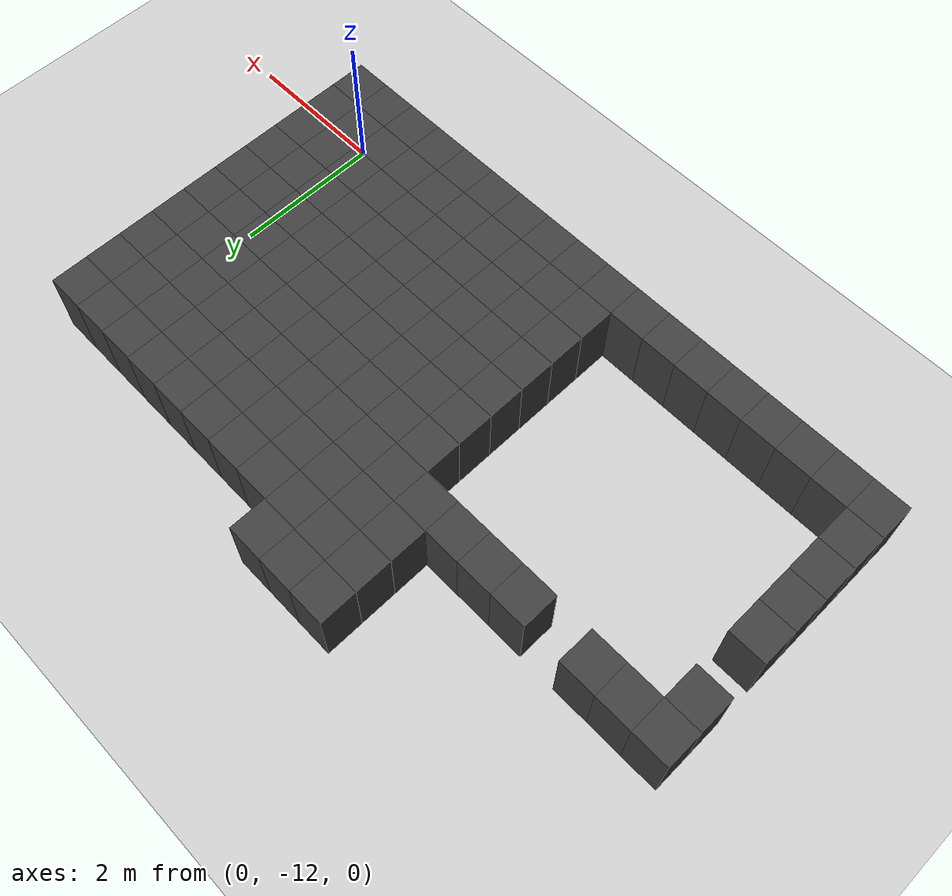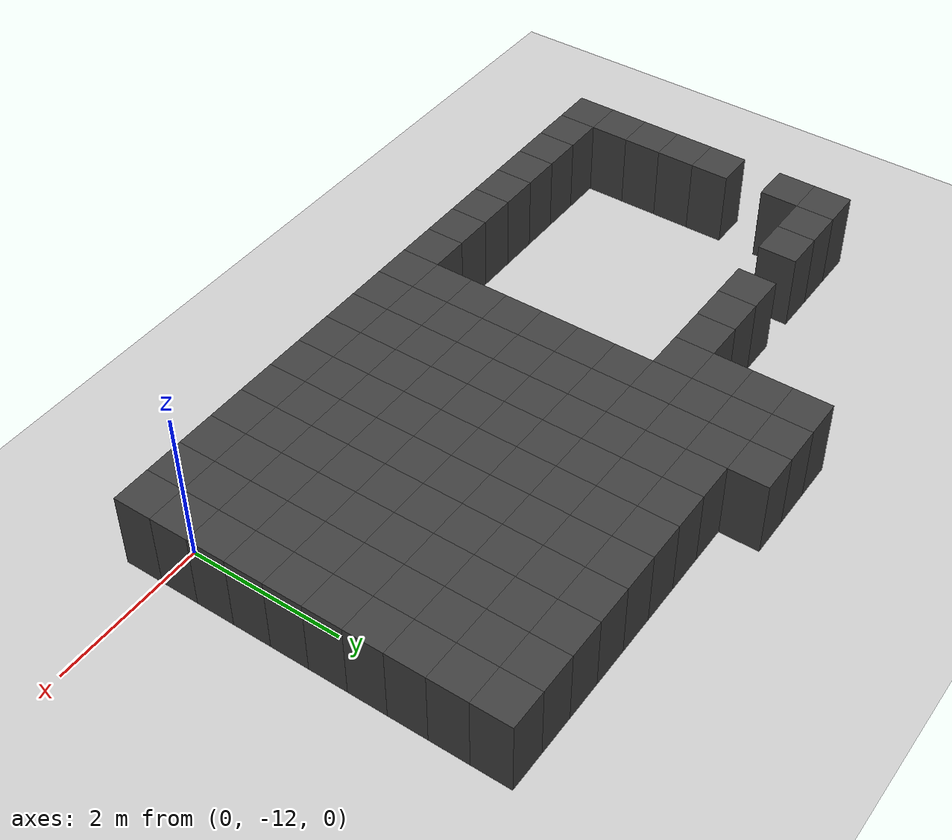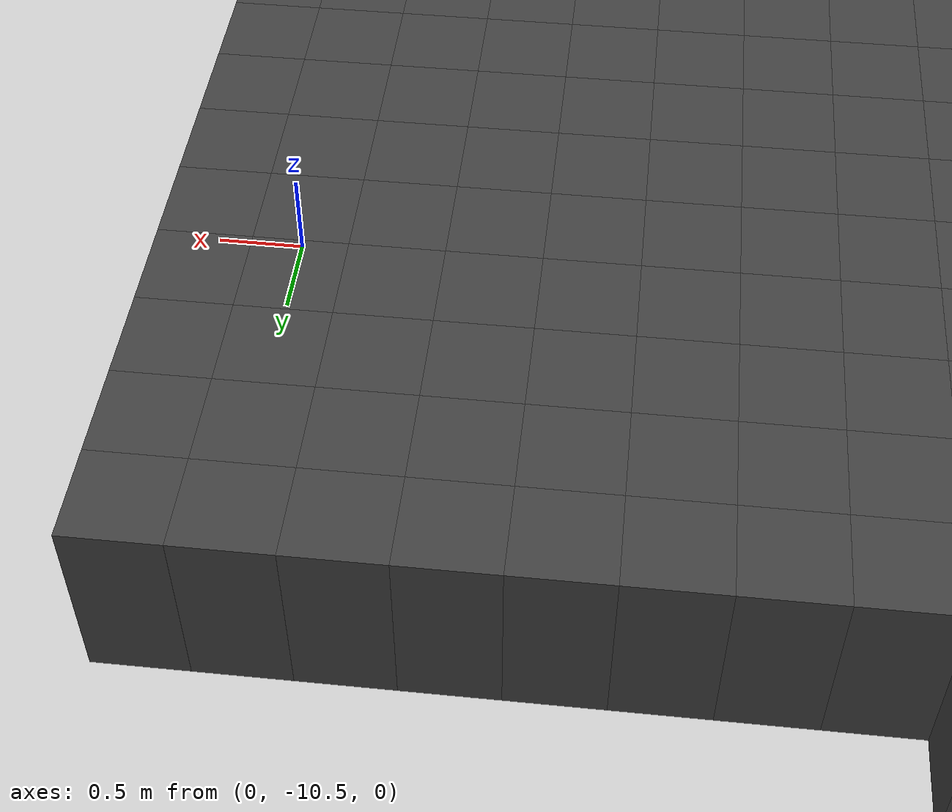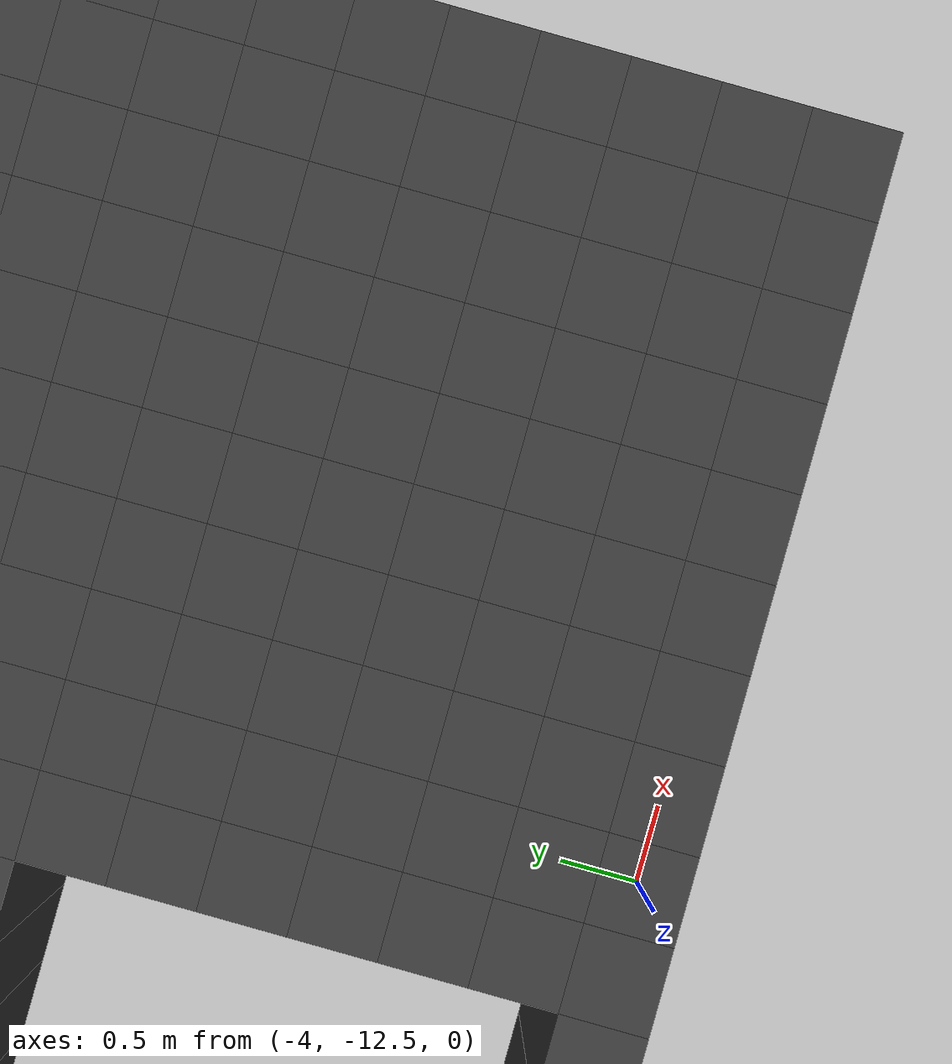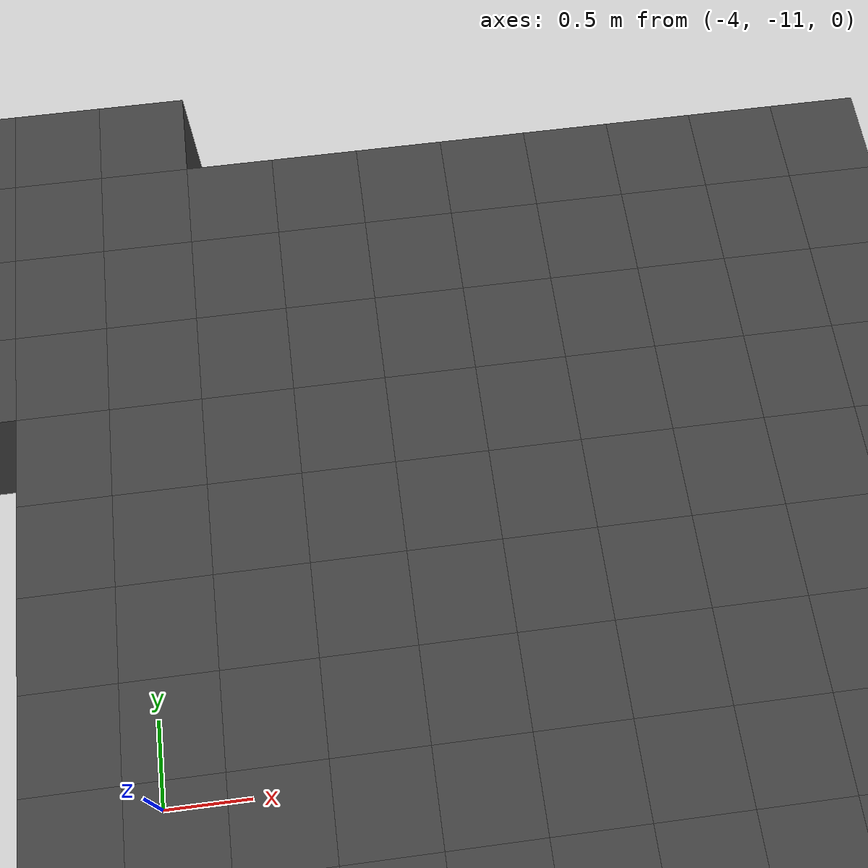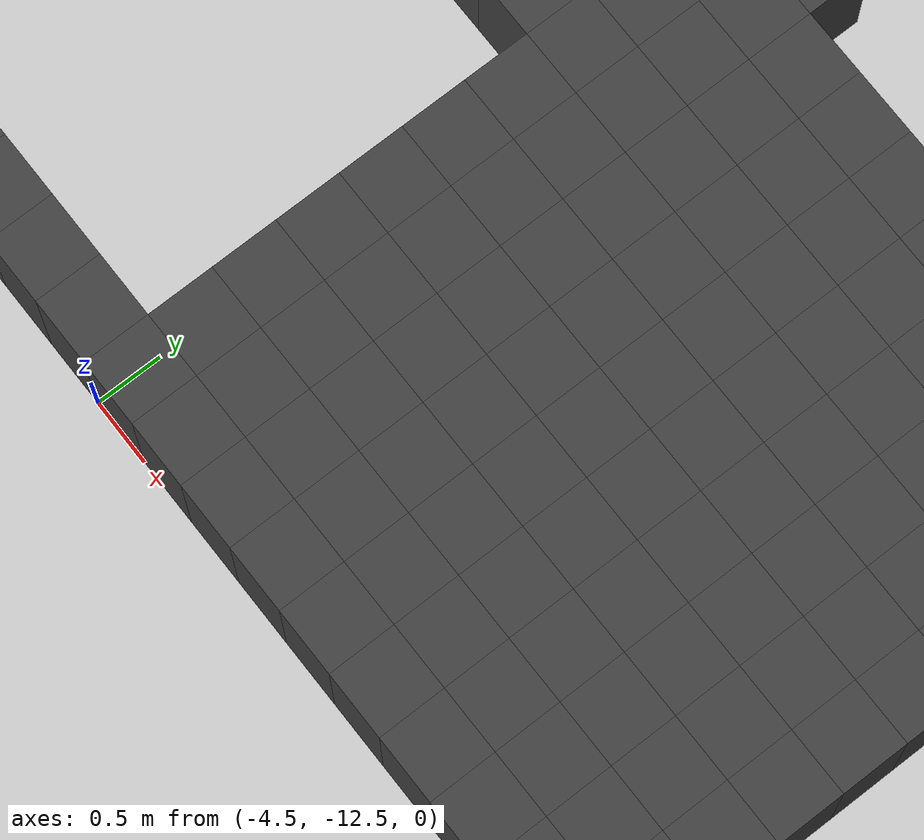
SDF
<sdf version="1.7">
 <world name="map_14190">
  <model name="ground_plane">
   <static>true</static>
   <link name="link">
    <collision name="collision">
     <geometry><plane><normal>0 0 1</normal><size>200 200</size></plane></geometry>
    </collision>
    <visual name="visual">
     <geometry><plane><normal>0 0 1</normal><size>200 200</size></plane></geometry>
     <material><ambient>0.8 0.8 0.8 1</ambient><diffuse>0.8 0.8 0.8 1</diffuse></material>
    </visual>
   </link>
  </model>
  <model name="maze_environment">
   <static>true</static>
   <link name="wall_1385">
    <pose>-4.750 -7.250 0.500 0 0 0</pose>
    <collision name="col"><geometry><box><size>0.5 0.5 1.0</size></box></geometry></collision>
    <visual name="vis">
     <geometry><box><size>0.5 0.5 1.0</size></box></geometry>
     <material><ambient>0.15 0.15 0.15 1</ambient><diffuse>0.25 0.25 0.25 1</diffuse></material>
    </visual>
   </link>
   <link name="wall_1386">
    <pose>-4.250 -7.250 0.500 0 0 0</pose>
    <collision name="col"><geometry><box><size>0.5 0.5 1.0</size></box></geometry></collision>
    <visual name="vis">
     <geometry><box><size>0.5 0.5 1.0</size></box></geometry>
     <material><ambient>0.15 0.15 0.15 1</ambient><diffuse>0.25 0.25 0.25 1</diffuse></material>
    </visual>
   </link>
   <link name="wall_1387">
    <pose>-3.750 -7.250 0.500 0 0 0</pose>
    <collision name="col"><geometry><box><size>0.5 0.5 1.0</size></box></geometry></collision>
    <visual name="vis">
     <geometry><box><size>0.5 0.5 1.0</size></box></geometry>
     <material><ambient>0.15 0.15 0.15 1</ambient><diffuse>0.25 0.25 0.25 1</diffuse></material>
    </visual>
   </link>
   <link name="wall_1418">
    <pose>-4.750 -7.750 0.500 0 0 0</pose>
    <collision name="col"><geometry><box><size>0.5 0.5 1.0</size></box></geometry></collision>
    <visual name="vis">
     <geometry><box><size>0.5 0.5 1.0</size></box></geometry>
     <material><ambient>0.15 0.15 0.15 1</ambient><diffuse>0.25 0.25 0.25 1</diffuse></material>
    </visual>
   </link>
   <link name="wall_1419">
    <pose>-4.250 -7.750 0.500 0 0 0</pose>
    <collision name="col"><geometry><box><size>0.5 0.5 1.0</size></box></geometry></collision>
    <visual name="vis">
     <geometry><box><size>0.5 0.5 1.0</size></box></geometry>
     <material><ambient>0.15 0.15 0.15 1</ambient><diffuse>0.25 0.25 0.25 1</diffuse></material>
    </visual>
   </link>
   <link name="wall_1420">
    <pose>-3.750 -7.750 0.500 0 0 0</pose>
    <collision name="col"><geometry><box><size>0.5 0.5 1.0</size></box></geometry></collision>
    <visual name="vis">
     <geometry><box><size>0.5 0.5 1.0</size></box></geometry>
     <material><ambient>0.15 0.15 0.15 1</ambient><diffuse>0.25 0.25 0.25 1</diffuse></material>
    </visual>
   </link>
   <link name="wall_1421">
    <pose>-3.250 -7.750 0.500 0 0 0</pose>
    <collision name="col"><geometry><box><size>0.5 0.5 1.0</size></box></geometry></collision>
    <visual name="vis">
     <geometry><box><size>0.5 0.5 1.0</size></box></geometry>
     <material><ambient>0.15 0.15 0.15 1</ambient><diffuse>0.25 0.25 0.25 1</diffuse></material>
    </visual>
   </link>
   <link name="wall_1422">
    <pose>-2.750 -7.750 0.500 0 0 0</pose>
    <collision name="col"><geometry><box><size>0.5 0.5 1.0</size></box></geometry></collision>
    <visual name="vis">
     <geometry><box><size>0.5 0.5 1.0</size></box></geometry>
     <material><ambient>0.15 0.15 0.15 1</ambient><diffuse>0.25 0.25 0.25 1</diffuse></material>
    </visual>
   </link>
   <link name="wall_1423">
    <pose>-2.250 -7.750 0.500 0 0 0</pose>
    <collision name="col"><geometry><box><size>0.5 0.5 1.0</size></box></geometry></collision>
    <visual name="vis">
     <geometry><box><size>0.5 0.5 1.0</size></box></geometry>
     <material><ambient>0.15 0.15 0.15 1</ambient><diffuse>0.25 0.25 0.25 1</diffuse></material>
    </visual>
   </link>
   <link name="wall_1424">
    <pose>-1.750 -7.750 0.500 0 0 0</pose>
    <collision name="col"><geometry><box><size>0.5 0.5 1.0</size></box></geometry></collision>
    <visual name="vis">
     <geometry><box><size>0.5 0.5 1.0</size></box></geometry>
     <material><ambient>0.15 0.15 0.15 1</ambient><diffuse>0.25 0.25 0.25 1</diffuse></material>
    </visual>
   </link>
   <link name="wall_1425">
    <pose>-1.250 -7.750 0.500 0 0 0</pose>
    <collision name="col"><geometry><box><size>0.5 0.5 1.0</size></box></geometry></collision>
    <visual name="vis">
     <geometry><box><size>0.5 0.5 1.0</size></box></geometry>
     <material><ambient>0.15 0.15 0.15 1</ambient><diffuse>0.25 0.25 0.25 1</diffuse></material>
    </visual>
   </link>
   <link name="wall_1426">
    <pose>-0.750 -7.750 0.500 0 0 0</pose>
    <collision name="col"><geometry><box><size>0.5 0.5 1.0</size></box></geometry></collision>
    <visual name="vis">
     <geometry><box><size>0.5 0.5 1.0</size></box></geometry>
     <material><ambient>0.15 0.15 0.15 1</ambient><diffuse>0.25 0.25 0.25 1</diffuse></material>
    </visual>
   </link>
   <link name="wall_1427">
    <pose>-0.250 -7.750 0.500 0 0 0</pose>
    <collision name="col"><geometry><box><size>0.5 0.5 1.0</size></box></geometry></collision>
    <visual name="vis">
     <geometry><box><size>0.5 0.5 1.0</size></box></geometry>
     <material><ambient>0.15 0.15 0.15 1</ambient><diffuse>0.25 0.25 0.25 1</diffuse></material>
    </visual>
   </link>
   <link name="wall_1428">
    <pose>0.250 -7.750 0.500 0 0 0</pose>
    <collision name="col"><geometry><box><size>0.5 0.5 1.0</size></box></geometry></collision>
    <visual name="vis">
     <geometry><box><size>0.5 0.5 1.0</size></box></geometry>
     <material><ambient>0.15 0.15 0.15 1</ambient><diffuse>0.25 0.25 0.25 1</diffuse></material>
    </visual>
   </link>
   <link name="wall_1451">
    <pose>-4.750 -8.250 0.500 0 0 0</pose>
    <collision name="col"><geometry><box><size>0.5 0.5 1.0</size></box></geometry></collision>
    <visual name="vis">
     <geometry><box><size>0.5 0.5 1.0</size></box></geometry>
     <material><ambient>0.15 0.15 0.15 1</ambient><diffuse>0.25 0.25 0.25 1</diffuse></material>
    </visual>
   </link>
   <link name="wall_1452">
    <pose>-4.250 -8.250 0.500 0 0 0</pose>
    <collision name="col"><geometry><box><size>0.5 0.5 1.0</size></box></geometry></collision>
    <visual name="vis">
     <geometry><box><size>0.5 0.5 1.0</size></box></geometry>
     <material><ambient>0.15 0.15 0.15 1</ambient><diffuse>0.25 0.25 0.25 1</diffuse></material>
    </visual>
   </link>
   <link name="wall_1453">
    <pose>-3.750 -8.250 0.500 0 0 0</pose>
    <collision name="col"><geometry><box><size>0.5 0.5 1.0</size></box></geometry></collision>
    <visual name="vis">
     <geometry><box><size>0.5 0.5 1.0</size></box></geometry>
     <material><ambient>0.15 0.15 0.15 1</ambient><diffuse>0.25 0.25 0.25 1</diffuse></material>
    </visual>
   </link>
   <link name="wall_1454">
    <pose>-3.250 -8.250 0.500 0 0 0</pose>
    <collision name="col"><geometry><box><size>0.5 0.5 1.0</size></box></geometry></collision>
    <visual name="vis">
     <geometry><box><size>0.5 0.5 1.0</size></box></geometry>
     <material><ambient>0.15 0.15 0.15 1</ambient><diffuse>0.25 0.25 0.25 1</diffuse></material>
    </visual>
   </link>
   <link name="wall_1455">
    <pose>-2.750 -8.250 0.500 0 0 0</pose>
    <collision name="col"><geometry><box><size>0.5 0.5 1.0</size></box></geometry></collision>
    <visual name="vis">
     <geometry><box><size>0.5 0.5 1.0</size></box></geometry>
     <material><ambient>0.15 0.15 0.15 1</ambient><diffuse>0.25 0.25 0.25 1</diffuse></material>
    </visual>
   </link>
   <link name="wall_1456">
    <pose>-2.250 -8.250 0.500 0 0 0</pose>
    <collision name="col"><geometry><box><size>0.5 0.5 1.0</size></box></geometry></collision>
    <visual name="vis">
     <geometry><box><size>0.5 0.5 1.0</size></box></geometry>
     <material><ambient>0.15 0.15 0.15 1</ambient><diffuse>0.25 0.25 0.25 1</diffuse></material>
    </visual>
   </link>
   <link name="wall_1457">
    <pose>-1.750 -8.250 0.500 0 0 0</pose>
    <collision name="col"><geometry><box><size>0.5 0.5 1.0</size></box></geometry></collision>
    <visual name="vis">
     <geometry><box><size>0.5 0.5 1.0</size></box></geometry>
     <material><ambient>0.15 0.15 0.15 1</ambient><diffuse>0.25 0.25 0.25 1</diffuse></material>
    </visual>
   </link>
   <link name="wall_1458">
    <pose>-1.250 -8.250 0.500 0 0 0</pose>
    <collision name="col"><geometry><box><size>0.5 0.5 1.0</size></box></geometry></collision>
    <visual name="vis">
     <geometry><box><size>0.5 0.5 1.0</size></box></geometry>
     <material><ambient>0.15 0.15 0.15 1</ambient><diffuse>0.25 0.25 0.25 1</diffuse></material>
    </visual>
   </link>
   <link name="wall_1459">
    <pose>-0.750 -8.250 0.500 0 0 0</pose>
    <collision name="col"><geometry><box><size>0.5 0.5 1.0</size></box></geometry></collision>
    <visual name="vis">
     <geometry><box><size>0.5 0.5 1.0</size></box></geometry>
     <material><ambient>0.15 0.15 0.15 1</ambient><diffuse>0.25 0.25 0.25 1</diffuse></material>
    </visual>
   </link>
   <link name="wall_1460">
    <pose>-0.250 -8.250 0.500 0 0 0</pose>
    <collision name="col"><geometry><box><size>0.5 0.5 1.0</size></box></geometry></collision>
    <visual name="vis">
     <geometry><box><size>0.5 0.5 1.0</size></box></geometry>
     <material><ambient>0.15 0.15 0.15 1</ambient><diffuse>0.25 0.25 0.25 1</diffuse></material>
    </visual>
   </link>
   <link name="wall_1461">
    <pose>0.250 -8.250 0.500 0 0 0</pose>
    <collision name="col"><geometry><box><size>0.5 0.5 1.0</size></box></geometry></collision>
    <visual name="vis">
     <geometry><box><size>0.5 0.5 1.0</size></box></geometry>
     <material><ambient>0.15 0.15 0.15 1</ambient><diffuse>0.25 0.25 0.25 1</diffuse></material>
    </visual>
   </link>
   <link name="wall_1484">
    <pose>-8.250 -8.750 0.500 0 0 0</pose>
    <collision name="col"><geometry><box><size>0.5 0.5 1.0</size></box></geometry></collision>
    <visual name="vis">
     <geometry><box><size>0.5 0.5 1.0</size></box></geometry>
     <material><ambient>0.15 0.15 0.15 1</ambient><diffuse>0.25 0.25 0.25 1</diffuse></material>
    </visual>
   </link>
   <link name="wall_1485">
    <pose>-7.750 -8.750 0.500 0 0 0</pose>
    <collision name="col"><geometry><box><size>0.5 0.5 1.0</size></box></geometry></collision>
    <visual name="vis">
     <geometry><box><size>0.5 0.5 1.0</size></box></geometry>
     <material><ambient>0.15 0.15 0.15 1</ambient><diffuse>0.25 0.25 0.25 1</diffuse></material>
    </visual>
   </link>
   <link name="wall_1486">
    <pose>-7.250 -8.750 0.500 0 0 0</pose>
    <collision name="col"><geometry><box><size>0.5 0.5 1.0</size></box></geometry></collision>
    <visual name="vis">
     <geometry><box><size>0.5 0.5 1.0</size></box></geometry>
     <material><ambient>0.15 0.15 0.15 1</ambient><diffuse>0.25 0.25 0.25 1</diffuse></material>
    </visual>
   </link>
   <link name="wall_1487">
    <pose>-6.250 -8.750 0.500 0 0 0</pose>
    <collision name="col"><geometry><box><size>0.5 0.5 1.0</size></box></geometry></collision>
    <visual name="vis">
     <geometry><box><size>0.5 0.5 1.0</size></box></geometry>
     <material><ambient>0.15 0.15 0.15 1</ambient><diffuse>0.25 0.25 0.25 1</diffuse></material>
    </visual>
   </link>
   <link name="wall_1488">
    <pose>-5.750 -8.750 0.500 0 0 0</pose>
    <collision name="col"><geometry><box><size>0.5 0.5 1.0</size></box></geometry></collision>
    <visual name="vis">
     <geometry><box><size>0.5 0.5 1.0</size></box></geometry>
     <material><ambient>0.15 0.15 0.15 1</ambient><diffuse>0.25 0.25 0.25 1</diffuse></material>
    </visual>
   </link>
   <link name="wall_1489">
    <pose>-5.250 -8.750 0.500 0 0 0</pose>
    <collision name="col"><geometry><box><size>0.5 0.5 1.0</size></box></geometry></collision>
    <visual name="vis">
     <geometry><box><size>0.5 0.5 1.0</size></box></geometry>
     <material><ambient>0.15 0.15 0.15 1</ambient><diffuse>0.25 0.25 0.25 1</diffuse></material>
    </visual>
   </link>
   <link name="wall_1490">
    <pose>-4.750 -8.750 0.500 0 0 0</pose>
    <collision name="col"><geometry><box><size>0.5 0.5 1.0</size></box></geometry></collision>
    <visual name="vis">
     <geometry><box><size>0.5 0.5 1.0</size></box></geometry>
     <material><ambient>0.15 0.15 0.15 1</ambient><diffuse>0.25 0.25 0.25 1</diffuse></material>
    </visual>
   </link>
   <link name="wall_1491">
    <pose>-4.250 -8.750 0.500 0 0 0</pose>
    <collision name="col"><geometry><box><size>0.5 0.5 1.0</size></box></geometry></collision>
    <visual name="vis">
     <geometry><box><size>0.5 0.5 1.0</size></box></geometry>
     <material><ambient>0.15 0.15 0.15 1</ambient><diffuse>0.25 0.25 0.25 1</diffuse></material>
    </visual>
   </link>
   <link name="wall_1492">
    <pose>-3.750 -8.750 0.500 0 0 0</pose>
    <collision name="col"><geometry><box><size>0.5 0.5 1.0</size></box></geometry></collision>
    <visual name="vis">
     <geometry><box><size>0.5 0.5 1.0</size></box></geometry>
     <material><ambient>0.15 0.15 0.15 1</ambient><diffuse>0.25 0.25 0.25 1</diffuse></material>
    </visual>
   </link>
   <link name="wall_1493">
    <pose>-3.250 -8.750 0.500 0 0 0</pose>
    <collision name="col"><geometry><box><size>0.5 0.5 1.0</size></box></geometry></collision>
    <visual name="vis">
     <geometry><box><size>0.5 0.5 1.0</size></box></geometry>
     <material><ambient>0.15 0.15 0.15 1</ambient><diffuse>0.25 0.25 0.25 1</diffuse></material>
    </visual>
   </link>
   <link name="wall_1494">
    <pose>-2.750 -8.750 0.500 0 0 0</pose>
    <collision name="col"><geometry><box><size>0.5 0.5 1.0</size></box></geometry></collision>
    <visual name="vis">
     <geometry><box><size>0.5 0.5 1.0</size></box></geometry>
     <material><ambient>0.15 0.15 0.15 1</ambient><diffuse>0.25 0.25 0.25 1</diffuse></material>
    </visual>
   </link>
   <link name="wall_1495">
    <pose>-2.250 -8.750 0.500 0 0 0</pose>
    <collision name="col"><geometry><box><size>0.5 0.5 1.0</size></box></geometry></collision>
    <visual name="vis">
     <geometry><box><size>0.5 0.5 1.0</size></box></geometry>
     <material><ambient>0.15 0.15 0.15 1</ambient><diffuse>0.25 0.25 0.25 1</diffuse></material>
    </visual>
   </link>
   <link name="wall_1496">
    <pose>-1.750 -8.750 0.500 0 0 0</pose>
    <collision name="col"><geometry><box><size>0.5 0.5 1.0</size></box></geometry></collision>
    <visual name="vis">
     <geometry><box><size>0.5 0.5 1.0</size></box></geometry>
     <material><ambient>0.15 0.15 0.15 1</ambient><diffuse>0.25 0.25 0.25 1</diffuse></material>
    </visual>
   </link>
   <link name="wall_1497">
    <pose>-1.250 -8.750 0.500 0 0 0</pose>
    <collision name="col"><geometry><box><size>0.5 0.5 1.0</size></box></geometry></collision>
    <visual name="vis">
     <geometry><box><size>0.5 0.5 1.0</size></box></geometry>
     <material><ambient>0.15 0.15 0.15 1</ambient><diffuse>0.25 0.25 0.25 1</diffuse></material>
    </visual>
   </link>
   <link name="wall_1498">
    <pose>-0.750 -8.750 0.500 0 0 0</pose>
    <collision name="col"><geometry><box><size>0.5 0.5 1.0</size></box></geometry></collision>
    <visual name="vis">
     <geometry><box><size>0.5 0.5 1.0</size></box></geometry>
     <material><ambient>0.15 0.15 0.15 1</ambient><diffuse>0.25 0.25 0.25 1</diffuse></material>
    </visual>
   </link>
   <link name="wall_1499">
    <pose>-0.250 -8.750 0.500 0 0 0</pose>
    <collision name="col"><geometry><box><size>0.5 0.5 1.0</size></box></geometry></collision>
    <visual name="vis">
     <geometry><box><size>0.5 0.5 1.0</size></box></geometry>
     <material><ambient>0.15 0.15 0.15 1</ambient><diffuse>0.25 0.25 0.25 1</diffuse></material>
    </visual>
   </link>
   <link name="wall_1500">
    <pose>0.250 -8.750 0.500 0 0 0</pose>
    <collision name="col"><geometry><box><size>0.5 0.5 1.0</size></box></geometry></collision>
    <visual name="vis">
     <geometry><box><size>0.5 0.5 1.0</size></box></geometry>
     <material><ambient>0.15 0.15 0.15 1</ambient><diffuse>0.25 0.25 0.25 1</diffuse></material>
    </visual>
   </link>
   <link name="wall_1523">
    <pose>-8.250 -9.250 0.500 0 0 0</pose>
    <collision name="col"><geometry><box><size>0.5 0.5 1.0</size></box></geometry></collision>
    <visual name="vis">
     <geometry><box><size>0.5 0.5 1.0</size></box></geometry>
     <material><ambient>0.15 0.15 0.15 1</ambient><diffuse>0.25 0.25 0.25 1</diffuse></material>
    </visual>
   </link>
   <link name="wall_1524">
    <pose>-4.250 -9.250 0.500 0 0 0</pose>
    <collision name="col"><geometry><box><size>0.5 0.5 1.0</size></box></geometry></collision>
    <visual name="vis">
     <geometry><box><size>0.5 0.5 1.0</size></box></geometry>
     <material><ambient>0.15 0.15 0.15 1</ambient><diffuse>0.25 0.25 0.25 1</diffuse></material>
    </visual>
   </link>
   <link name="wall_1525">
    <pose>-3.750 -9.250 0.500 0 0 0</pose>
    <collision name="col"><geometry><box><size>0.5 0.5 1.0</size></box></geometry></collision>
    <visual name="vis">
     <geometry><box><size>0.5 0.5 1.0</size></box></geometry>
     <material><ambient>0.15 0.15 0.15 1</ambient><diffuse>0.25 0.25 0.25 1</diffuse></material>
    </visual>
   </link>
   <link name="wall_1526">
    <pose>-3.250 -9.250 0.500 0 0 0</pose>
    <collision name="col"><geometry><box><size>0.5 0.5 1.0</size></box></geometry></collision>
    <visual name="vis">
     <geometry><box><size>0.5 0.5 1.0</size></box></geometry>
     <material><ambient>0.15 0.15 0.15 1</ambient><diffuse>0.25 0.25 0.25 1</diffuse></material>
    </visual>
   </link>
   <link name="wall_1527">
    <pose>-2.750 -9.250 0.500 0 0 0</pose>
    <collision name="col"><geometry><box><size>0.5 0.5 1.0</size></box></geometry></collision>
    <visual name="vis">
     <geometry><box><size>0.5 0.5 1.0</size></box></geometry>
     <material><ambient>0.15 0.15 0.15 1</ambient><diffuse>0.25 0.25 0.25 1</diffuse></material>
    </visual>
   </link>
   <link name="wall_1528">
    <pose>-2.250 -9.250 0.500 0 0 0</pose>
    <collision name="col"><geometry><box><size>0.5 0.5 1.0</size></box></geometry></collision>
    <visual name="vis">
     <geometry><box><size>0.5 0.5 1.0</size></box></geometry>
     <material><ambient>0.15 0.15 0.15 1</ambient><diffuse>0.25 0.25 0.25 1</diffuse></material>
    </visual>
   </link>
   <link name="wall_1529">
    <pose>-1.750 -9.250 0.500 0 0 0</pose>
    <collision name="col"><geometry><box><size>0.5 0.5 1.0</size></box></geometry></collision>
    <visual name="vis">
     <geometry><box><size>0.5 0.5 1.0</size></box></geometry>
     <material><ambient>0.15 0.15 0.15 1</ambient><diffuse>0.25 0.25 0.25 1</diffuse></material>
    </visual>
   </link>
   <link name="wall_1530">
    <pose>-1.250 -9.250 0.500 0 0 0</pose>
    <collision name="col"><geometry><box><size>0.5 0.5 1.0</size></box></geometry></collision>
    <visual name="vis">
     <geometry><box><size>0.5 0.5 1.0</size></box></geometry>
     <material><ambient>0.15 0.15 0.15 1</ambient><diffuse>0.25 0.25 0.25 1</diffuse></material>
    </visual>
   </link>
   <link name="wall_1531">
    <pose>-0.750 -9.250 0.500 0 0 0</pose>
    <collision name="col"><geometry><box><size>0.5 0.5 1.0</size></box></geometry></collision>
    <visual name="vis">
     <geometry><box><size>0.5 0.5 1.0</size></box></geometry>
     <material><ambient>0.15 0.15 0.15 1</ambient><diffuse>0.25 0.25 0.25 1</diffuse></material>
    </visual>
   </link>
   <link name="wall_1532">
    <pose>-0.250 -9.250 0.500 0 0 0</pose>
    <collision name="col"><geometry><box><size>0.5 0.5 1.0</size></box></geometry></collision>
    <visual name="vis">
     <geometry><box><size>0.5 0.5 1.0</size></box></geometry>
     <material><ambient>0.15 0.15 0.15 1</ambient><diffuse>0.25 0.25 0.25 1</diffuse></material>
    </visual>
   </link>
   <link name="wall_1533">
    <pose>0.250 -9.250 0.500 0 0 0</pose>
    <collision name="col"><geometry><box><size>0.5 0.5 1.0</size></box></geometry></collision>
    <visual name="vis">
     <geometry><box><size>0.5 0.5 1.0</size></box></geometry>
     <material><ambient>0.15 0.15 0.15 1</ambient><diffuse>0.25 0.25 0.25 1</diffuse></material>
    </visual>
   </link>
   <link name="wall_1556">
    <pose>-4.250 -9.750 0.500 0 0 0</pose>
    <collision name="col"><geometry><box><size>0.5 0.5 1.0</size></box></geometry></collision>
    <visual name="vis">
     <geometry><box><size>0.5 0.5 1.0</size></box></geometry>
     <material><ambient>0.15 0.15 0.15 1</ambient><diffuse>0.25 0.25 0.25 1</diffuse></material>
    </visual>
   </link>
   <link name="wall_1557">
    <pose>-3.750 -9.750 0.500 0 0 0</pose>
    <collision name="col"><geometry><box><size>0.5 0.5 1.0</size></box></geometry></collision>
    <visual name="vis">
     <geometry><box><size>0.5 0.5 1.0</size></box></geometry>
     <material><ambient>0.15 0.15 0.15 1</ambient><diffuse>0.25 0.25 0.25 1</diffuse></material>
    </visual>
   </link>
   <link name="wall_1558">
    <pose>-3.250 -9.750 0.500 0 0 0</pose>
    <collision name="col"><geometry><box><size>0.5 0.5 1.0</size></box></geometry></collision>
    <visual name="vis">
     <geometry><box><size>0.5 0.5 1.0</size></box></geometry>
     <material><ambient>0.15 0.15 0.15 1</ambient><diffuse>0.25 0.25 0.25 1</diffuse></material>
    </visual>
   </link>
   <link name="wall_1559">
    <pose>-2.750 -9.750 0.500 0 0 0</pose>
    <collision name="col"><geometry><box><size>0.5 0.5 1.0</size></box></geometry></collision>
    <visual name="vis">
     <geometry><box><size>0.5 0.5 1.0</size></box></geometry>
     <material><ambient>0.15 0.15 0.15 1</ambient><diffuse>0.25 0.25 0.25 1</diffuse></material>
    </visual>
   </link>
   <link name="wall_1560">
    <pose>-2.250 -9.750 0.500 0 0 0</pose>
    <collision name="col"><geometry><box><size>0.5 0.5 1.0</size></box></geometry></collision>
    <visual name="vis">
     <geometry><box><size>0.5 0.5 1.0</size></box></geometry>
     <material><ambient>0.15 0.15 0.15 1</ambient><diffuse>0.25 0.25 0.25 1</diffuse></material>
    </visual>
   </link>
   <link name="wall_1561">
    <pose>-1.750 -9.750 0.500 0 0 0</pose>
    <collision name="col"><geometry><box><size>0.5 0.5 1.0</size></box></geometry></collision>
    <visual name="vis">
     <geometry><box><size>0.5 0.5 1.0</size></box></geometry>
     <material><ambient>0.15 0.15 0.15 1</ambient><diffuse>0.25 0.25 0.25 1</diffuse></material>
    </visual>
   </link>
   <link name="wall_1562">
    <pose>-1.250 -9.750 0.500 0 0 0</pose>
    <collision name="col"><geometry><box><size>0.5 0.5 1.0</size></box></geometry></collision>
    <visual name="vis">
     <geometry><box><size>0.5 0.5 1.0</size></box></geometry>
     <material><ambient>0.15 0.15 0.15 1</ambient><diffuse>0.25 0.25 0.25 1</diffuse></material>
    </visual>
   </link>
   <link name="wall_1563">
    <pose>-0.750 -9.750 0.500 0 0 0</pose>
    <collision name="col"><geometry><box><size>0.5 0.5 1.0</size></box></geometry></collision>
    <visual name="vis">
     <geometry><box><size>0.5 0.5 1.0</size></box></geometry>
     <material><ambient>0.15 0.15 0.15 1</ambient><diffuse>0.25 0.25 0.25 1</diffuse></material>
    </visual>
   </link>
   <link name="wall_1564">
    <pose>-0.250 -9.750 0.500 0 0 0</pose>
    <collision name="col"><geometry><box><size>0.5 0.5 1.0</size></box></geometry></collision>
    <visual name="vis">
     <geometry><box><size>0.5 0.5 1.0</size></box></geometry>
     <material><ambient>0.15 0.15 0.15 1</ambient><diffuse>0.25 0.25 0.25 1</diffuse></material>
    </visual>
   </link>
   <link name="wall_1565">
    <pose>0.250 -9.750 0.500 0 0 0</pose>
    <collision name="col"><geometry><box><size>0.5 0.5 1.0</size></box></geometry></collision>
    <visual name="vis">
     <geometry><box><size>0.5 0.5 1.0</size></box></geometry>
     <material><ambient>0.15 0.15 0.15 1</ambient><diffuse>0.25 0.25 0.25 1</diffuse></material>
    </visual>
   </link>
   <link name="wall_1588">
    <pose>-8.250 -10.250 0.500 0 0 0</pose>
    <collision name="col"><geometry><box><size>0.5 0.5 1.0</size></box></geometry></collision>
    <visual name="vis">
     <geometry><box><size>0.5 0.5 1.0</size></box></geometry>
     <material><ambient>0.15 0.15 0.15 1</ambient><diffuse>0.25 0.25 0.25 1</diffuse></material>
    </visual>
   </link>
   <link name="wall_1589">
    <pose>-4.250 -10.250 0.500 0 0 0</pose>
    <collision name="col"><geometry><box><size>0.5 0.5 1.0</size></box></geometry></collision>
    <visual name="vis">
     <geometry><box><size>0.5 0.5 1.0</size></box></geometry>
     <material><ambient>0.15 0.15 0.15 1</ambient><diffuse>0.25 0.25 0.25 1</diffuse></material>
    </visual>
   </link>
   <link name="wall_1590">
    <pose>-3.750 -10.250 0.500 0 0 0</pose>
    <collision name="col"><geometry><box><size>0.5 0.5 1.0</size></box></geometry></collision>
    <visual name="vis">
     <geometry><box><size>0.5 0.5 1.0</size></box></geometry>
     <material><ambient>0.15 0.15 0.15 1</ambient><diffuse>0.25 0.25 0.25 1</diffuse></material>
    </visual>
   </link>
   <link name="wall_1591">
    <pose>-3.250 -10.250 0.500 0 0 0</pose>
    <collision name="col"><geometry><box><size>0.5 0.5 1.0</size></box></geometry></collision>
    <visual name="vis">
     <geometry><box><size>0.5 0.5 1.0</size></box></geometry>
     <material><ambient>0.15 0.15 0.15 1</ambient><diffuse>0.25 0.25 0.25 1</diffuse></material>
    </visual>
   </link>
   <link name="wall_1592">
    <pose>-2.750 -10.250 0.500 0 0 0</pose>
    <collision name="col"><geometry><box><size>0.5 0.5 1.0</size></box></geometry></collision>
    <visual name="vis">
     <geometry><box><size>0.5 0.5 1.0</size></box></geometry>
     <material><ambient>0.15 0.15 0.15 1</ambient><diffuse>0.25 0.25 0.25 1</diffuse></material>
    </visual>
   </link>
   <link name="wall_1593">
    <pose>-2.250 -10.250 0.500 0 0 0</pose>
    <collision name="col"><geometry><box><size>0.5 0.5 1.0</size></box></geometry></collision>
    <visual name="vis">
     <geometry><box><size>0.5 0.5 1.0</size></box></geometry>
     <material><ambient>0.15 0.15 0.15 1</ambient><diffuse>0.25 0.25 0.25 1</diffuse></material>
    </visual>
   </link>
   <link name="wall_1594">
    <pose>-1.750 -10.250 0.500 0 0 0</pose>
    <collision name="col"><geometry><box><size>0.5 0.5 1.0</size></box></geometry></collision>
    <visual name="vis">
     <geometry><box><size>0.5 0.5 1.0</size></box></geometry>
     <material><ambient>0.15 0.15 0.15 1</ambient><diffuse>0.25 0.25 0.25 1</diffuse></material>
    </visual>
   </link>
   <link name="wall_1595">
    <pose>-1.250 -10.250 0.500 0 0 0</pose>
    <collision name="col"><geometry><box><size>0.5 0.5 1.0</size></box></geometry></collision>
    <visual name="vis">
     <geometry><box><size>0.5 0.5 1.0</size></box></geometry>
     <material><ambient>0.15 0.15 0.15 1</ambient><diffuse>0.25 0.25 0.25 1</diffuse></material>
    </visual>
   </link>
   <link name="wall_1596">
    <pose>-0.750 -10.250 0.500 0 0 0</pose>
    <collision name="col"><geometry><box><size>0.5 0.5 1.0</size></box></geometry></collision>
    <visual name="vis">
     <geometry><box><size>0.5 0.5 1.0</size></box></geometry>
     <material><ambient>0.15 0.15 0.15 1</ambient><diffuse>0.25 0.25 0.25 1</diffuse></material>
    </visual>
   </link>
   <link name="wall_1597">
    <pose>-0.250 -10.250 0.500 0 0 0</pose>
    <collision name="col"><geometry><box><size>0.5 0.5 1.0</size></box></geometry></collision>
    <visual name="vis">
     <geometry><box><size>0.5 0.5 1.0</size></box></geometry>
     <material><ambient>0.15 0.15 0.15 1</ambient><diffuse>0.25 0.25 0.25 1</diffuse></material>
    </visual>
   </link>
   <link name="wall_1598">
    <pose>0.250 -10.250 0.500 0 0 0</pose>
    <collision name="col"><geometry><box><size>0.5 0.5 1.0</size></box></geometry></collision>
    <visual name="vis">
     <geometry><box><size>0.5 0.5 1.0</size></box></geometry>
     <material><ambient>0.15 0.15 0.15 1</ambient><diffuse>0.25 0.25 0.25 1</diffuse></material>
    </visual>
   </link>
   <link name="wall_1621">
    <pose>-8.250 -10.750 0.500 0 0 0</pose>
    <collision name="col"><geometry><box><size>0.5 0.5 1.0</size></box></geometry></collision>
    <visual name="vis">
     <geometry><box><size>0.5 0.5 1.0</size></box></geometry>
     <material><ambient>0.15 0.15 0.15 1</ambient><diffuse>0.25 0.25 0.25 1</diffuse></material>
    </visual>
   </link>
   <link name="wall_1622">
    <pose>-4.250 -10.750 0.500 0 0 0</pose>
    <collision name="col"><geometry><box><size>0.5 0.5 1.0</size></box></geometry></collision>
    <visual name="vis">
     <geometry><box><size>0.5 0.5 1.0</size></box></geometry>
     <material><ambient>0.15 0.15 0.15 1</ambient><diffuse>0.25 0.25 0.25 1</diffuse></material>
    </visual>
   </link>
   <link name="wall_1623">
    <pose>-3.750 -10.750 0.500 0 0 0</pose>
    <collision name="col"><geometry><box><size>0.5 0.5 1.0</size></box></geometry></collision>
    <visual name="vis">
     <geometry><box><size>0.5 0.5 1.0</size></box></geometry>
     <material><ambient>0.15 0.15 0.15 1</ambient><diffuse>0.25 0.25 0.25 1</diffuse></material>
    </visual>
   </link>
   <link name="wall_1624">
    <pose>-3.250 -10.750 0.500 0 0 0</pose>
    <collision name="col"><geometry><box><size>0.5 0.5 1.0</size></box></geometry></collision>
    <visual name="vis">
     <geometry><box><size>0.5 0.5 1.0</size></box></geometry>
     <material><ambient>0.15 0.15 0.15 1</ambient><diffuse>0.25 0.25 0.25 1</diffuse></material>
    </visual>
   </link>
   <link name="wall_1625">
    <pose>-2.750 -10.750 0.500 0 0 0</pose>
    <collision name="col"><geometry><box><size>0.5 0.5 1.0</size></box></geometry></collision>
    <visual name="vis">
     <geometry><box><size>0.5 0.5 1.0</size></box></geometry>
     <material><ambient>0.15 0.15 0.15 1</ambient><diffuse>0.25 0.25 0.25 1</diffuse></material>
    </visual>
   </link>
   <link name="wall_1626">
    <pose>-2.250 -10.750 0.500 0 0 0</pose>
    <collision name="col"><geometry><box><size>0.5 0.5 1.0</size></box></geometry></collision>
    <visual name="vis">
     <geometry><box><size>0.5 0.5 1.0</size></box></geometry>
     <material><ambient>0.15 0.15 0.15 1</ambient><diffuse>0.25 0.25 0.25 1</diffuse></material>
    </visual>
   </link>
   <link name="wall_1627">
    <pose>-1.750 -10.750 0.500 0 0 0</pose>
    <collision name="col"><geometry><box><size>0.5 0.5 1.0</size></box></geometry></collision>
    <visual name="vis">
     <geometry><box><size>0.5 0.5 1.0</size></box></geometry>
     <material><ambient>0.15 0.15 0.15 1</ambient><diffuse>0.25 0.25 0.25 1</diffuse></material>
    </visual>
   </link>
   <link name="wall_1628">
    <pose>-1.250 -10.750 0.500 0 0 0</pose>
    <collision name="col"><geometry><box><size>0.5 0.5 1.0</size></box></geometry></collision>
    <visual name="vis">
     <geometry><box><size>0.5 0.5 1.0</size></box></geometry>
     <material><ambient>0.15 0.15 0.15 1</ambient><diffuse>0.25 0.25 0.25 1</diffuse></material>
    </visual>
   </link>
   <link name="wall_1629">
    <pose>-0.750 -10.750 0.500 0 0 0</pose>
    <collision name="col"><geometry><box><size>0.5 0.5 1.0</size></box></geometry></collision>
    <visual name="vis">
     <geometry><box><size>0.5 0.5 1.0</size></box></geometry>
     <material><ambient>0.15 0.15 0.15 1</ambient><diffuse>0.25 0.25 0.25 1</diffuse></material>
    </visual>
   </link>
   <link name="wall_1630">
    <pose>-0.250 -10.750 0.500 0 0 0</pose>
    <collision name="col"><geometry><box><size>0.5 0.5 1.0</size></box></geometry></collision>
    <visual name="vis">
     <geometry><box><size>0.5 0.5 1.0</size></box></geometry>
     <material><ambient>0.15 0.15 0.15 1</ambient><diffuse>0.25 0.25 0.25 1</diffuse></material>
    </visual>
   </link>
   <link name="wall_1631">
    <pose>0.250 -10.750 0.500 0 0 0</pose>
    <collision name="col"><geometry><box><size>0.5 0.5 1.0</size></box></geometry></collision>
    <visual name="vis">
     <geometry><box><size>0.5 0.5 1.0</size></box></geometry>
     <material><ambient>0.15 0.15 0.15 1</ambient><diffuse>0.25 0.25 0.25 1</diffuse></material>
    </visual>
   </link>
   <link name="wall_1651">
    <pose>-8.250 -11.250 0.500 0 0 0</pose>
    <collision name="col"><geometry><box><size>0.5 0.5 1.0</size></box></geometry></collision>
    <visual name="vis">
     <geometry><box><size>0.5 0.5 1.0</size></box></geometry>
     <material><ambient>0.15 0.15 0.15 1</ambient><diffuse>0.25 0.25 0.25 1</diffuse></material>
    </visual>
   </link>
   <link name="wall_1652">
    <pose>-4.250 -11.250 0.500 0 0 0</pose>
    <collision name="col"><geometry><box><size>0.5 0.5 1.0</size></box></geometry></collision>
    <visual name="vis">
     <geometry><box><size>0.5 0.5 1.0</size></box></geometry>
     <material><ambient>0.15 0.15 0.15 1</ambient><diffuse>0.25 0.25 0.25 1</diffuse></material>
    </visual>
   </link>
   <link name="wall_1653">
    <pose>-3.750 -11.250 0.500 0 0 0</pose>
    <collision name="col"><geometry><box><size>0.5 0.5 1.0</size></box></geometry></collision>
    <visual name="vis">
     <geometry><box><size>0.5 0.5 1.0</size></box></geometry>
     <material><ambient>0.15 0.15 0.15 1</ambient><diffuse>0.25 0.25 0.25 1</diffuse></material>
    </visual>
   </link>
   <link name="wall_1654">
    <pose>-3.250 -11.250 0.500 0 0 0</pose>
    <collision name="col"><geometry><box><size>0.5 0.5 1.0</size></box></geometry></collision>
    <visual name="vis">
     <geometry><box><size>0.5 0.5 1.0</size></box></geometry>
     <material><ambient>0.15 0.15 0.15 1</ambient><diffuse>0.25 0.25 0.25 1</diffuse></material>
    </visual>
   </link>
   <link name="wall_1655">
    <pose>-2.750 -11.250 0.500 0 0 0</pose>
    <collision name="col"><geometry><box><size>0.5 0.5 1.0</size></box></geometry></collision>
    <visual name="vis">
     <geometry><box><size>0.5 0.5 1.0</size></box></geometry>
     <material><ambient>0.15 0.15 0.15 1</ambient><diffuse>0.25 0.25 0.25 1</diffuse></material>
    </visual>
   </link>
   <link name="wall_1656">
    <pose>-2.250 -11.250 0.500 0 0 0</pose>
    <collision name="col"><geometry><box><size>0.5 0.5 1.0</size></box></geometry></collision>
    <visual name="vis">
     <geometry><box><size>0.5 0.5 1.0</size></box></geometry>
     <material><ambient>0.15 0.15 0.15 1</ambient><diffuse>0.25 0.25 0.25 1</diffuse></material>
    </visual>
   </link>
   <link name="wall_1657">
    <pose>-1.750 -11.250 0.500 0 0 0</pose>
    <collision name="col"><geometry><box><size>0.5 0.5 1.0</size></box></geometry></collision>
    <visual name="vis">
     <geometry><box><size>0.5 0.5 1.0</size></box></geometry>
     <material><ambient>0.15 0.15 0.15 1</ambient><diffuse>0.25 0.25 0.25 1</diffuse></material>
    </visual>
   </link>
   <link name="wall_1658">
    <pose>-1.250 -11.250 0.500 0 0 0</pose>
    <collision name="col"><geometry><box><size>0.5 0.5 1.0</size></box></geometry></collision>
    <visual name="vis">
     <geometry><box><size>0.5 0.5 1.0</size></box></geometry>
     <material><ambient>0.15 0.15 0.15 1</ambient><diffuse>0.25 0.25 0.25 1</diffuse></material>
    </visual>
   </link>
   <link name="wall_1659">
    <pose>-0.750 -11.250 0.500 0 0 0</pose>
    <collision name="col"><geometry><box><size>0.5 0.5 1.0</size></box></geometry></collision>
    <visual name="vis">
     <geometry><box><size>0.5 0.5 1.0</size></box></geometry>
     <material><ambient>0.15 0.15 0.15 1</ambient><diffuse>0.25 0.25 0.25 1</diffuse></material>
    </visual>
   </link>
   <link name="wall_1660">
    <pose>-0.250 -11.250 0.500 0 0 0</pose>
    <collision name="col"><geometry><box><size>0.5 0.5 1.0</size></box></geometry></collision>
    <visual name="vis">
     <geometry><box><size>0.5 0.5 1.0</size></box></geometry>
     <material><ambient>0.15 0.15 0.15 1</ambient><diffuse>0.25 0.25 0.25 1</diffuse></material>
    </visual>
   </link>
   <link name="wall_1661">
    <pose>0.250 -11.250 0.500 0 0 0</pose>
    <collision name="col"><geometry><box><size>0.5 0.5 1.0</size></box></geometry></collision>
    <visual name="vis">
     <geometry><box><size>0.5 0.5 1.0</size></box></geometry>
     <material><ambient>0.15 0.15 0.15 1</ambient><diffuse>0.25 0.25 0.25 1</diffuse></material>
    </visual>
   </link>
   <link name="wall_1682">
    <pose>-8.250 -11.750 0.500 0 0 0</pose>
    <collision name="col"><geometry><box><size>0.5 0.5 1.0</size></box></geometry></collision>
    <visual name="vis">
     <geometry><box><size>0.5 0.5 1.0</size></box></geometry>
     <material><ambient>0.15 0.15 0.15 1</ambient><diffuse>0.25 0.25 0.25 1</diffuse></material>
    </visual>
   </link>
   <link name="wall_1683">
    <pose>-4.250 -11.750 0.500 0 0 0</pose>
    <collision name="col"><geometry><box><size>0.5 0.5 1.0</size></box></geometry></collision>
    <visual name="vis">
     <geometry><box><size>0.5 0.5 1.0</size></box></geometry>
     <material><ambient>0.15 0.15 0.15 1</ambient><diffuse>0.25 0.25 0.25 1</diffuse></material>
    </visual>
   </link>
   <link name="wall_1684">
    <pose>-3.750 -11.750 0.500 0 0 0</pose>
    <collision name="col"><geometry><box><size>0.5 0.5 1.0</size></box></geometry></collision>
    <visual name="vis">
     <geometry><box><size>0.5 0.5 1.0</size></box></geometry>
     <material><ambient>0.15 0.15 0.15 1</ambient><diffuse>0.25 0.25 0.25 1</diffuse></material>
    </visual>
   </link>
   <link name="wall_1685">
    <pose>-3.250 -11.750 0.500 0 0 0</pose>
    <collision name="col"><geometry><box><size>0.5 0.5 1.0</size></box></geometry></collision>
    <visual name="vis">
     <geometry><box><size>0.5 0.5 1.0</size></box></geometry>
     <material><ambient>0.15 0.15 0.15 1</ambient><diffuse>0.25 0.25 0.25 1</diffuse></material>
    </visual>
   </link>
   <link name="wall_1686">
    <pose>-2.750 -11.750 0.500 0 0 0</pose>
    <collision name="col"><geometry><box><size>0.5 0.5 1.0</size></box></geometry></collision>
    <visual name="vis">
     <geometry><box><size>0.5 0.5 1.0</size></box></geometry>
     <material><ambient>0.15 0.15 0.15 1</ambient><diffuse>0.25 0.25 0.25 1</diffuse></material>
    </visual>
   </link>
   <link name="wall_1687">
    <pose>-2.250 -11.750 0.500 0 0 0</pose>
    <collision name="col"><geometry><box><size>0.5 0.5 1.0</size></box></geometry></collision>
    <visual name="vis">
     <geometry><box><size>0.5 0.5 1.0</size></box></geometry>
     <material><ambient>0.15 0.15 0.15 1</ambient><diffuse>0.25 0.25 0.25 1</diffuse></material>
    </visual>
   </link>
   <link name="wall_1688">
    <pose>-1.750 -11.750 0.500 0 0 0</pose>
    <collision name="col"><geometry><box><size>0.5 0.5 1.0</size></box></geometry></collision>
    <visual name="vis">
     <geometry><box><size>0.5 0.5 1.0</size></box></geometry>
     <material><ambient>0.15 0.15 0.15 1</ambient><diffuse>0.25 0.25 0.25 1</diffuse></material>
    </visual>
   </link>
   <link name="wall_1689">
    <pose>-1.250 -11.750 0.500 0 0 0</pose>
    <collision name="col"><geometry><box><size>0.5 0.5 1.0</size></box></geometry></collision>
    <visual name="vis">
     <geometry><box><size>0.5 0.5 1.0</size></box></geometry>
     <material><ambient>0.15 0.15 0.15 1</ambient><diffuse>0.25 0.25 0.25 1</diffuse></material>
    </visual>
   </link>
   <link name="wall_1690">
    <pose>-0.750 -11.750 0.500 0 0 0</pose>
    <collision name="col"><geometry><box><size>0.5 0.5 1.0</size></box></geometry></collision>
    <visual name="vis">
     <geometry><box><size>0.5 0.5 1.0</size></box></geometry>
     <material><ambient>0.15 0.15 0.15 1</ambient><diffuse>0.25 0.25 0.25 1</diffuse></material>
    </visual>
   </link>
   <link name="wall_1691">
    <pose>-0.250 -11.750 0.500 0 0 0</pose>
    <collision name="col"><geometry><box><size>0.5 0.5 1.0</size></box></geometry></collision>
    <visual name="vis">
     <geometry><box><size>0.5 0.5 1.0</size></box></geometry>
     <material><ambient>0.15 0.15 0.15 1</ambient><diffuse>0.25 0.25 0.25 1</diffuse></material>
    </visual>
   </link>
   <link name="wall_1692">
    <pose>0.250 -11.750 0.500 0 0 0</pose>
    <collision name="col"><geometry><box><size>0.5 0.5 1.0</size></box></geometry></collision>
    <visual name="vis">
     <geometry><box><size>0.5 0.5 1.0</size></box></geometry>
     <material><ambient>0.15 0.15 0.15 1</ambient><diffuse>0.25 0.25 0.25 1</diffuse></material>
    </visual>
   </link>
   <link name="wall_1722">
    <pose>-8.250 -12.250 0.500 0 0 0</pose>
    <collision name="col"><geometry><box><size>0.5 0.5 1.0</size></box></geometry></collision>
    <visual name="vis">
     <geometry><box><size>0.5 0.5 1.0</size></box></geometry>
     <material><ambient>0.15 0.15 0.15 1</ambient><diffuse>0.25 0.25 0.25 1</diffuse></material>
    </visual>
   </link>
   <link name="wall_1723">
    <pose>-7.750 -12.250 0.500 0 0 0</pose>
    <collision name="col"><geometry><box><size>0.5 0.5 1.0</size></box></geometry></collision>
    <visual name="vis">
     <geometry><box><size>0.5 0.5 1.0</size></box></geometry>
     <material><ambient>0.15 0.15 0.15 1</ambient><diffuse>0.25 0.25 0.25 1</diffuse></material>
    </visual>
   </link>
   <link name="wall_1724">
    <pose>-7.250 -12.250 0.500 0 0 0</pose>
    <collision name="col"><geometry><box><size>0.5 0.5 1.0</size></box></geometry></collision>
    <visual name="vis">
     <geometry><box><size>0.5 0.5 1.0</size></box></geometry>
     <material><ambient>0.15 0.15 0.15 1</ambient><diffuse>0.25 0.25 0.25 1</diffuse></material>
    </visual>
   </link>
   <link name="wall_1725">
    <pose>-6.750 -12.250 0.500 0 0 0</pose>
    <collision name="col"><geometry><box><size>0.5 0.5 1.0</size></box></geometry></collision>
    <visual name="vis">
     <geometry><box><size>0.5 0.5 1.0</size></box></geometry>
     <material><ambient>0.15 0.15 0.15 1</ambient><diffuse>0.25 0.25 0.25 1</diffuse></material>
    </visual>
   </link>
   <link name="wall_1726">
    <pose>-6.250 -12.250 0.500 0 0 0</pose>
    <collision name="col"><geometry><box><size>0.5 0.5 1.0</size></box></geometry></collision>
    <visual name="vis">
     <geometry><box><size>0.5 0.5 1.0</size></box></geometry>
     <material><ambient>0.15 0.15 0.15 1</ambient><diffuse>0.25 0.25 0.25 1</diffuse></material>
    </visual>
   </link>
   <link name="wall_1727">
    <pose>-5.750 -12.250 0.500 0 0 0</pose>
    <collision name="col"><geometry><box><size>0.5 0.5 1.0</size></box></geometry></collision>
    <visual name="vis">
     <geometry><box><size>0.5 0.5 1.0</size></box></geometry>
     <material><ambient>0.15 0.15 0.15 1</ambient><diffuse>0.25 0.25 0.25 1</diffuse></material>
    </visual>
   </link>
   <link name="wall_1728">
    <pose>-5.250 -12.250 0.500 0 0 0</pose>
    <collision name="col"><geometry><box><size>0.5 0.5 1.0</size></box></geometry></collision>
    <visual name="vis">
     <geometry><box><size>0.5 0.5 1.0</size></box></geometry>
     <material><ambient>0.15 0.15 0.15 1</ambient><diffuse>0.25 0.25 0.25 1</diffuse></material>
    </visual>
   </link>
   <link name="wall_1729">
    <pose>-4.750 -12.250 0.500 0 0 0</pose>
    <collision name="col"><geometry><box><size>0.5 0.5 1.0</size></box></geometry></collision>
    <visual name="vis">
     <geometry><box><size>0.5 0.5 1.0</size></box></geometry>
     <material><ambient>0.15 0.15 0.15 1</ambient><diffuse>0.25 0.25 0.25 1</diffuse></material>
    </visual>
   </link>
   <link name="wall_1730">
    <pose>-4.250 -12.250 0.500 0 0 0</pose>
    <collision name="col"><geometry><box><size>0.5 0.5 1.0</size></box></geometry></collision>
    <visual name="vis">
     <geometry><box><size>0.5 0.5 1.0</size></box></geometry>
     <material><ambient>0.15 0.15 0.15 1</ambient><diffuse>0.25 0.25 0.25 1</diffuse></material>
    </visual>
   </link>
   <link name="wall_1731">
    <pose>-3.750 -12.250 0.500 0 0 0</pose>
    <collision name="col"><geometry><box><size>0.5 0.5 1.0</size></box></geometry></collision>
    <visual name="vis">
     <geometry><box><size>0.5 0.5 1.0</size></box></geometry>
     <material><ambient>0.15 0.15 0.15 1</ambient><diffuse>0.25 0.25 0.25 1</diffuse></material>
    </visual>
   </link>
   <link name="wall_1732">
    <pose>-3.250 -12.250 0.500 0 0 0</pose>
    <collision name="col"><geometry><box><size>0.5 0.5 1.0</size></box></geometry></collision>
    <visual name="vis">
     <geometry><box><size>0.5 0.5 1.0</size></box></geometry>
     <material><ambient>0.15 0.15 0.15 1</ambient><diffuse>0.25 0.25 0.25 1</diffuse></material>
    </visual>
   </link>
   <link name="wall_1733">
    <pose>-2.750 -12.250 0.500 0 0 0</pose>
    <collision name="col"><geometry><box><size>0.5 0.5 1.0</size></box></geometry></collision>
    <visual name="vis">
     <geometry><box><size>0.5 0.5 1.0</size></box></geometry>
     <material><ambient>0.15 0.15 0.15 1</ambient><diffuse>0.25 0.25 0.25 1</diffuse></material>
    </visual>
   </link>
   <link name="wall_1734">
    <pose>-2.250 -12.250 0.500 0 0 0</pose>
    <collision name="col"><geometry><box><size>0.5 0.5 1.0</size></box></geometry></collision>
    <visual name="vis">
     <geometry><box><size>0.5 0.5 1.0</size></box></geometry>
     <material><ambient>0.15 0.15 0.15 1</ambient><diffuse>0.25 0.25 0.25 1</diffuse></material>
    </visual>
   </link>
   <link name="wall_1735">
    <pose>-1.750 -12.250 0.500 0 0 0</pose>
    <collision name="col"><geometry><box><size>0.5 0.5 1.0</size></box></geometry></collision>
    <visual name="vis">
     <geometry><box><size>0.5 0.5 1.0</size></box></geometry>
     <material><ambient>0.15 0.15 0.15 1</ambient><diffuse>0.25 0.25 0.25 1</diffuse></material>
    </visual>
   </link>
   <link name="wall_1736">
    <pose>-1.250 -12.250 0.500 0 0 0</pose>
    <collision name="col"><geometry><box><size>0.5 0.5 1.0</size></box></geometry></collision>
    <visual name="vis">
     <geometry><box><size>0.5 0.5 1.0</size></box></geometry>
     <material><ambient>0.15 0.15 0.15 1</ambient><diffuse>0.25 0.25 0.25 1</diffuse></material>
    </visual>
   </link>
   <link name="wall_1737">
    <pose>-0.750 -12.250 0.500 0 0 0</pose>
    <collision name="col"><geometry><box><size>0.5 0.5 1.0</size></box></geometry></collision>
    <visual name="vis">
     <geometry><box><size>0.5 0.5 1.0</size></box></geometry>
     <material><ambient>0.15 0.15 0.15 1</ambient><diffuse>0.25 0.25 0.25 1</diffuse></material>
    </visual>
   </link>
   <link name="wall_1738">
    <pose>-0.250 -12.250 0.500 0 0 0</pose>
    <collision name="col"><geometry><box><size>0.5 0.5 1.0</size></box></geometry></collision>
    <visual name="vis">
     <geometry><box><size>0.5 0.5 1.0</size></box></geometry>
     <material><ambient>0.15 0.15 0.15 1</ambient><diffuse>0.25 0.25 0.25 1</diffuse></material>
    </visual>
   </link>
   <link name="wall_1739">
    <pose>0.250 -12.250 0.500 0 0 0</pose>
    <collision name="col"><geometry><box><size>0.5 0.5 1.0</size></box></geometry></collision>
    <visual name="vis">
     <geometry><box><size>0.5 0.5 1.0</size></box></geometry>
     <material><ambient>0.15 0.15 0.15 1</ambient><diffuse>0.25 0.25 0.25 1</diffuse></material>
    </visual>
   </link>
  </model>
 </world>
</sdf>
